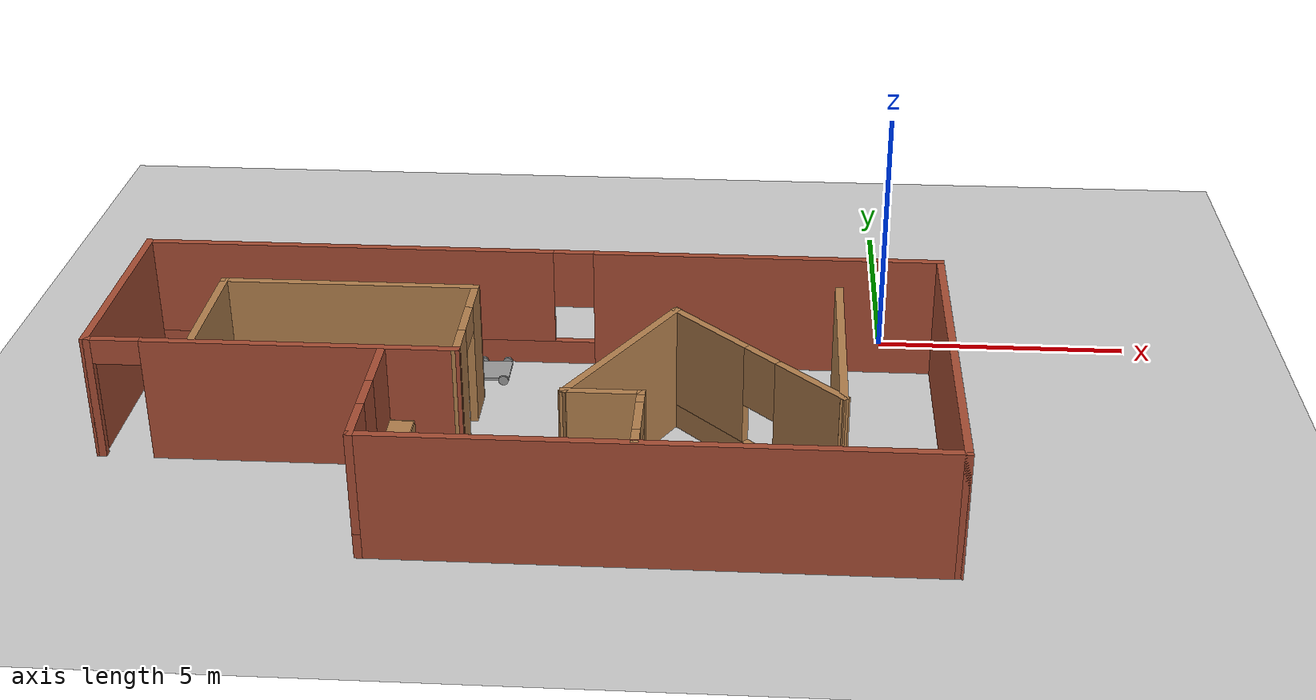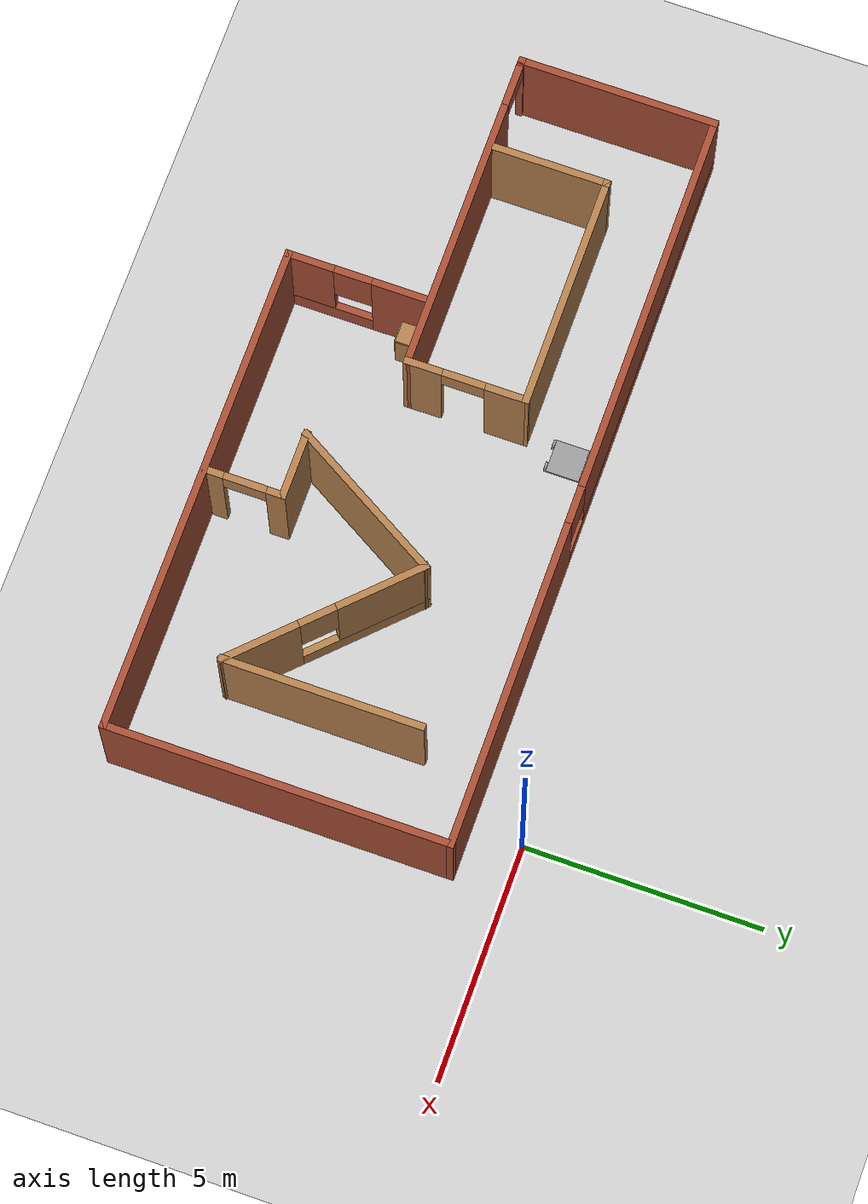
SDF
<sdf version="1.6">
 <world name="default">
  <model name="ground_plane">
   <static>1</static>
   <link name="link">
    <collision name="collision">
     <geometry><plane><normal>0 0 1</normal><size>100 100</size></plane></geometry>
     <surface>
      <contact><collide_bitmask>65535</collide_bitmask></contact>
      <friction><ode><mu>100</mu><mu2>50</mu2></ode></friction>
     </surface>
    </collision>
    <visual name="visual">
     <cast_shadows>0</cast_shadows>
     <geometry><plane><normal>0 0 1</normal><size>100 100</size></plane></geometry>
     <material>
      <script><uri>file://media/materials/scripts/gazebo.material</uri><name>Gazebo/Grey</name></script>
     </material>
    </visual>
   </link>
  </model>
  <model name="house">
   <pose>-6.8963 -4.67451 0 0 -0 0</pose>
   <link name="Wall_1">
    <pose>-2.425 -2.125 0 0 -0 -1.5708</pose>
    <visual name="Wall_1_Visual_0">
     <pose>-0.924394 0 1.25 0 -0 0</pose>
     <geometry><box><size>1.15121 0.15 2.5</size></box></geometry>
     <material>
      <script><uri>file://media/materials/scripts/gazebo.material</uri><name>Gazebo/Bricks</name></script>
      <ambient>1 1 1 1</ambient>
     </material>
     <meta><layer>0</layer></meta>
    </visual>
    <collision name="Wall_1_Collision_0">
     <geometry><box><size>1.15121 0.15 2.5</size></box></geometry>
     <pose>-0.924394 0 1.25 0 -0 0</pose>
    </collision>
    <visual name="Wall_1_Visual_1">
     <pose>0.575606 0 0.25 0 -0 0</pose>
     <geometry><box><size>1.84879 0.15 0.5</size></box></geometry>
     <material>
      <script><uri>file://media/materials/scripts/gazebo.material</uri><name>Gazebo/Bricks</name></script>
      <ambient>1 1 1 1</ambient>
     </material>
     <meta><layer>0</layer></meta>
    </visual>
    <collision name="Wall_1_Collision_1">
     <geometry><box><size>1.84879 0.15 0.5</size></box></geometry>
     <pose>0.575606 0 0.25 0 -0 0</pose>
    </collision>
    <visual name="Wall_1_Visual_2">
     <pose>0.975606 0 1.5 0 -0 0</pose>
     <geometry><box><size>1.04879 0.15 2</size></box></geometry>
     <material>
      <script><uri>file://media/materials/scripts/gazebo.material</uri><name>Gazebo/Bricks</name></script>
      <ambient>1 1 1 1</ambient>
     </material>
     <meta><layer>0</layer></meta>
    </visual>
    <collision name="Wall_1_Collision_2">
     <geometry><box><size>1.04879 0.15 2</size></box></geometry>
     <pose>0.975606 0 1.5 0 -0 0</pose>
    </collision>
    <visual name="Wall_1_Visual_3">
     <pose>0.051212 0 1.9 0 -0 0</pose>
     <geometry><box><size>0.8 0.15 1.2</size></box></geometry>
     <material>
      <script><uri>file://media/materials/scripts/gazebo.material</uri><name>Gazebo/Bricks</name></script>
      <ambient>1 1 1 1</ambient>
     </material>
     <meta><layer>0</layer></meta>
    </visual>
    <collision name="Wall_1_Collision_3">
     <geometry><box><size>0.8 0.15 1.2</size></box></geometry>
     <pose>0.051212 0 1.9 0 -0 0</pose>
    </collision>
   </link>
   <link name="Wall_13">
    <pose>-1.07695 0.690857 0 0 -0 -1.56922</pose>
    <visual name="Wall_13_Visual_0">
     <pose>-0.852217 0 1.25 0 -0 0</pose>
     <geometry><box><size>0.927282 0.15 2.5</size></box></geometry>
     <material>
      <script><uri>file://media/materials/scripts/gazebo.material</uri><name>Gazebo/Wood</name></script>
      <ambient>1 1 1 1</ambient>
     </material>
     <meta><layer>0</layer></meta>
    </visual>
    <collision name="Wall_13_Collision_0">
     <geometry><box><size>0.927282 0.15 2.5</size></box></geometry>
     <pose>-0.852217 0 1.25 0 -0 0</pose>
    </collision>
    <visual name="Wall_13_Visual_1">
     <pose>0.913641 0 1.25 0 -0 0</pose>
     <geometry><box><size>0.804435 0.15 2.5</size></box></geometry>
     <material>
      <script><uri>file://media/materials/scripts/gazebo.material</uri><name>Gazebo/Wood</name></script>
      <ambient>1 1 1 1</ambient>
     </material>
     <meta><layer>0</layer></meta>
    </visual>
    <collision name="Wall_13_Collision_1">
     <geometry><box><size>0.804435 0.15 2.5</size></box></geometry>
     <pose>0.913641 0 1.25 0 -0 0</pose>
    </collision>
    <visual name="Wall_13_Visual_2">
     <pose>0.061424 0 2.25 0 -0 0</pose>
     <geometry><box><size>0.9 0.15 0.5</size></box></geometry>
     <material>
      <script><uri>file://media/materials/scripts/gazebo.material</uri><name>Gazebo/Wood</name></script>
      <ambient>1 1 1 1</ambient>
     </material>
     <meta><layer>0</layer></meta>
    </visual>
    <collision name="Wall_13_Collision_2">
     <geometry><box><size>0.9 0.15 0.5</size></box></geometry>
     <pose>0.061424 0 2.25 0 -0 0</pose>
    </collision>
   </link>
   <link name="Wall_15">
    <collision name="Wall_15_Collision">
     <geometry><box><size>4.25 0.15 2.5</size></box></geometry>
     <pose>0 0 1.25 0 -0 0</pose>
    </collision>
    <visual name="Wall_15_Visual">
     <pose>0 0 1.25 0 -0 0</pose>
     <geometry><box><size>4.25 0.15 2.5</size></box></geometry>
     <material>
      <script><uri>file://media/materials/scripts/gazebo.material</uri><name>Gazebo/Wood</name></script>
      <ambient>1 1 1 1</ambient>
     </material>
     <meta><layer>0</layer></meta>
    </visual>
    <pose>5.90972 0.188689 0 0 -0 -1.5708</pose>
   </link>
   <link name="Wall_16">
    <pose>4.37176 -0.323354 0 0 -0 2.35619</pose>
    <visual name="Wall_16_Visual_0">
     <pose>-1.39671 0 1.25 0 -0 0</pose>
     <geometry><box><size>1.70657 0.15 2.5</size></box></geometry>
     <material>
      <script><uri>file://media/materials/scripts/gazebo.material</uri><name>Gazebo/Wood</name></script>
      <ambient>1 1 1 1</ambient>
     </material>
     <meta><layer>0</layer></meta>
    </visual>
    <collision name="Wall_16_Collision_0">
     <geometry><box><size>1.70657 0.15 2.5</size></box></geometry>
     <pose>-1.39671 0 1.25 0 -0 0</pose>
    </collision>
    <visual name="Wall_16_Visual_1">
     <pose>0.853285 0 0.25 0 -0 0</pose>
     <geometry><box><size>2.79343 0.15 0.5</size></box></geometry>
     <material>
      <script><uri>file://media/materials/scripts/gazebo.material</uri><name>Gazebo/Wood</name></script>
      <ambient>1 1 1 1</ambient>
     </material>
     <meta><layer>0</layer></meta>
    </visual>
    <collision name="Wall_16_Collision_1">
     <geometry><box><size>2.79343 0.15 0.5</size></box></geometry>
     <pose>0.853285 0 0.25 0 -0 0</pose>
    </collision>
    <visual name="Wall_16_Visual_2">
     <pose>1.25328 0 1.5 0 -0 0</pose>
     <geometry><box><size>1.99343 0.15 2</size></box></geometry>
     <material>
      <script><uri>file://media/materials/scripts/gazebo.material</uri><name>Gazebo/Wood</name></script>
      <ambient>1 1 1 1</ambient>
     </material>
     <meta><layer>0</layer></meta>
    </visual>
    <collision name="Wall_16_Collision_2">
     <geometry><box><size>1.99343 0.15 2</size></box></geometry>
     <pose>1.25328 0 1.5 0 -0 0</pose>
    </collision>
    <visual name="Wall_16_Visual_3">
     <pose>-0.143431 0 1.9 0 -0 0</pose>
     <geometry><box><size>0.8 0.15 1.2</size></box></geometry>
     <material>
      <script><uri>file://media/materials/scripts/gazebo.material</uri><name>Gazebo/Wood</name></script>
      <ambient>1 1 1 1</ambient>
     </material>
     <meta><layer>0</layer></meta>
    </visual>
    <collision name="Wall_16_Collision_3">
     <geometry><box><size>0.8 0.15 1.2</size></box></geometry>
     <pose>-0.143431 0 1.9 0 -0 0</pose>
    </collision>
   </link>
   <link name="Wall_17">
    <collision name="Wall_17_Collision">
     <geometry><box><size>3.75 0.15 2.5</size></box></geometry>
     <pose>0 0 1.25 0 -0 0</pose>
    </collision>
    <visual name="Wall_17_Visual">
     <pose>0 0 1.25 0 -0 0</pose>
     <geometry><box><size>3.75 0.15 2.5</size></box></geometry>
     <material>
      <script><uri>file://media/materials/scripts/gazebo.material</uri><name>Gazebo/Wood</name></script>
      <ambient>1 1 1 1</ambient>
     </material>
     <meta><layer>0</layer></meta>
    </visual>
    <pose>1.9338 -0.344242 0 0 -0 -2.0944</pose>
   </link>
   <link name="Wall_18">
    <collision name="Wall_18_Collision">
     <geometry><box><size>1.5 0.15 2.5</size></box></geometry>
     <pose>0 0 1.25 0 -0 0</pose>
    </collision>
    <visual name="Wall_18_Visual">
     <pose>0 0 1.25 0 -0 0</pose>
     <geometry><box><size>1.5 0.15 2.5</size></box></geometry>
     <material>
      <script><uri>file://media/materials/scripts/gazebo.material</uri><name>Gazebo/Wood</name></script>
      <ambient>1 1 1 1</ambient>
     </material>
     <meta><layer>0</layer></meta>
    </visual>
    <pose>1.7088 -1.90309 0 0 -0 0</pose>
   </link>
   <link name="Wall_19">
    <pose>2.38381 -2.70309 0 0 -0 -1.5708</pose>
    <visual name="Wall_19_Visual_0">
     <pose>-0.669476 0 1.25 0 -0 0</pose>
     <geometry><box><size>0.411048 0.15 2.5</size></box></geometry>
     <material>
      <script><uri>file://media/materials/scripts/gazebo.material</uri><name>Gazebo/Wood</name></script>
      <ambient>1 1 1 1</ambient>
     </material>
     <meta><layer>0</layer></meta>
    </visual>
    <collision name="Wall_19_Collision_0">
     <geometry><box><size>0.411048 0.15 2.5</size></box></geometry>
     <pose>-0.669476 0 1.25 0 -0 0</pose>
    </collision>
    <visual name="Wall_19_Visual_1">
     <pose>0.655524 0 1.25 0 -0 0</pose>
     <geometry><box><size>0.438952 0.15 2.5</size></box></geometry>
     <material>
      <script><uri>file://media/materials/scripts/gazebo.material</uri><name>Gazebo/Wood</name></script>
      <ambient>1 1 1 1</ambient>
     </material>
     <meta><layer>0</layer></meta>
    </visual>
    <collision name="Wall_19_Collision_1">
     <geometry><box><size>0.438952 0.15 2.5</size></box></geometry>
     <pose>0.655524 0 1.25 0 -0 0</pose>
    </collision>
    <visual name="Wall_19_Visual_2">
     <pose>-0.013952 0 2.25 0 -0 0</pose>
     <geometry><box><size>0.9 0.15 0.5</size></box></geometry>
     <material>
      <script><uri>file://media/materials/scripts/gazebo.material</uri><name>Gazebo/Wood</name></script>
      <ambient>1 1 1 1</ambient>
     </material>
     <meta><layer>0</layer></meta>
    </visual>
    <collision name="Wall_19_Collision_2">
     <geometry><box><size>0.9 0.15 0.5</size></box></geometry>
     <pose>-0.013952 0 2.25 0 -0 0</pose>
    </collision>
   </link>
   <link name="Wall_2">
    <collision name="Wall_2_Collision">
     <geometry><box><size>10.5 0.15 2.5</size></box></geometry>
     <pose>0 0 1.25 0 -0 0</pose>
    </collision>
    <visual name="Wall_2_Visual">
     <pose>0 0 1.25 0 -0 0</pose>
     <geometry><box><size>10.5 0.15 2.5</size></box></geometry>
     <material>
      <script><uri>file://media/materials/scripts/gazebo.material</uri><name>Gazebo/Bricks</name></script>
      <ambient>1 1 1 1</ambient>
     </material>
     <meta><layer>0</layer></meta>
    </visual>
    <pose>2.75 -3.55 0 0 -0 0</pose>
   </link>
   <link name="Wall_3">
    <collision name="Wall_3_Collision">
     <geometry><box><size>7.25 0.15 2.5</size></box></geometry>
     <pose>0 0 1.25 0 -0 0</pose>
    </collision>
    <visual name="Wall_3_Visual">
     <pose>0 0 1.25 0 -0 0</pose>
     <geometry><box><size>7.25 0.15 2.5</size></box></geometry>
     <material>
      <script><uri>file://media/materials/scripts/gazebo.material</uri><name>Gazebo/Bricks</name></script>
      <ambient>1 1 1 1</ambient>
     </material>
     <meta><layer>0</layer></meta>
    </visual>
    <pose>7.925 0 0 0 -0 1.5708</pose>
   </link>
   <link name="Wall_4">
    <pose>-0 3.55 0 0 -0 3.14159</pose>
    <visual name="Wall_4_Visual_0">
     <pose>-4.53004 0 1.25 0 -0 0</pose>
     <geometry><box><size>6.93992 0.15 2.5</size></box></geometry>
     <material>
      <script><uri>file://media/materials/scripts/gazebo.material</uri><name>Gazebo/Bricks</name></script>
      <ambient>1 1 1 1</ambient>
     </material>
     <meta><layer>0</layer></meta>
    </visual>
    <collision name="Wall_4_Collision_0">
     <geometry><box><size>6.93992 0.15 2.5</size></box></geometry>
     <pose>-4.53004 0 1.25 0 -0 0</pose>
    </collision>
    <visual name="Wall_4_Visual_1">
     <pose>3.46996 0 0.25 0 -0 0</pose>
     <geometry><box><size>9.06008 0.15 0.5</size></box></geometry>
     <material>
      <script><uri>file://media/materials/scripts/gazebo.material</uri><name>Gazebo/Bricks</name></script>
      <ambient>1 1 1 1</ambient>
     </material>
     <meta><layer>0</layer></meta>
    </visual>
    <collision name="Wall_4_Collision_1">
     <geometry><box><size>9.06008 0.15 0.5</size></box></geometry>
     <pose>3.46996 0 0.25 0 -0 0</pose>
    </collision>
    <visual name="Wall_4_Visual_2">
     <pose>3.86996 0 1.5 0 -0 0</pose>
     <geometry><box><size>8.26008 0.15 2</size></box></geometry>
     <material>
      <script><uri>file://media/materials/scripts/gazebo.material</uri><name>Gazebo/Bricks</name></script>
      <ambient>1 1 1 1</ambient>
     </material>
     <meta><layer>0</layer></meta>
    </visual>
    <collision name="Wall_4_Collision_2">
     <geometry><box><size>8.26008 0.15 2</size></box></geometry>
     <pose>3.86996 0 1.5 0 -0 0</pose>
    </collision>
    <visual name="Wall_4_Visual_3">
     <pose>-0.660078 0 1.9 0 -0 0</pose>
     <geometry><box><size>0.8 0.15 1.2</size></box></geometry>
     <material>
      <script><uri>file://media/materials/scripts/gazebo.material</uri><name>Gazebo/Bricks</name></script>
      <ambient>1 1 1 1</ambient>
     </material>
     <meta><layer>0</layer></meta>
    </visual>
    <collision name="Wall_4_Collision_3">
     <geometry><box><size>0.8 0.15 1.2</size></box></geometry>
     <pose>-0.660078 0 1.9 0 -0 0</pose>
    </collision>
   </link>
   <link name="Wall_5">
    <collision name="Wall_5_Collision">
     <geometry><box><size>4.25 0.15 2.5</size></box></geometry>
     <pose>0 0 1.25 0 -0 0</pose>
    </collision>
    <visual name="Wall_5_Visual">
     <pose>0 0 1.25 0 -0 0</pose>
     <geometry><box><size>4.25 0.15 2.5</size></box></geometry>
     <material>
      <script><uri>file://media/materials/scripts/gazebo.material</uri><name>Gazebo/Bricks</name></script>
      <ambient>1 1 1 1</ambient>
     </material>
     <meta><layer>0</layer></meta>
    </visual>
    <pose>-7.925 1.5 0 0 -0 -1.5708</pose>
   </link>
   <link name="Wall_6">
    <pose>-4.5 -0.55 0 0 -0 0</pose>
    <visual name="Wall_6_Visual_0">
     <pose>-3.40348 0 1.25 0 -0 0</pose>
     <geometry><box><size>0.193029 0.15 2.5</size></box></geometry>
     <material>
      <script><uri>file://media/materials/scripts/gazebo.material</uri><name>Gazebo/Bricks</name></script>
      <ambient>1 1 1 1</ambient>
     </material>
     <meta><layer>0</layer></meta>
    </visual>
    <collision name="Wall_6_Collision_0">
     <geometry><box><size>0.193029 0.15 2.5</size></box></geometry>
     <pose>-3.40348 0 1.25 0 -0 0</pose>
    </collision>
    <visual name="Wall_6_Visual_1">
     <pose>0.546515 0 1.25 0 -0 0</pose>
     <geometry><box><size>5.90697 0.15 2.5</size></box></geometry>
     <material>
      <script><uri>file://media/materials/scripts/gazebo.material</uri><name>Gazebo/Bricks</name></script>
      <ambient>1 1 1 1</ambient>
     </material>
     <meta><layer>0</layer></meta>
    </visual>
    <collision name="Wall_6_Collision_1">
     <geometry><box><size>5.90697 0.15 2.5</size></box></geometry>
     <pose>0.546515 0 1.25 0 -0 0</pose>
    </collision>
    <visual name="Wall_6_Visual_2">
     <pose>-2.85697 0 2.25 0 -0 0</pose>
     <geometry><box><size>0.9 0.15 0.5</size></box></geometry>
     <material>
      <script><uri>file://media/materials/scripts/gazebo.material</uri><name>Gazebo/Bricks</name></script>
      <ambient>1 1 1 1</ambient>
     </material>
     <meta><layer>0</layer></meta>
    </visual>
    <collision name="Wall_6_Collision_2">
     <geometry><box><size>0.9 0.15 0.5</size></box></geometry>
     <pose>-2.85697 0 2.25 0 -0 0</pose>
    </collision>
   </link>
   <link name="Wall_8">
    <collision name="Wall_8_Collision">
     <geometry><box><size>2.5 0.15 2.5</size></box></geometry>
     <pose>0 0 1.25 0 -0 0</pose>
    </collision>
    <visual name="Wall_8_Visual">
     <pose>0 0 1.25 0 -0 0</pose>
     <geometry><box><size>2.5 0.15 2.5</size></box></geometry>
     <material>
      <script><uri>file://media/materials/scripts/gazebo.material</uri><name>Gazebo/Wood</name></script>
      <ambient>1 1 1 1</ambient>
     </material>
     <meta><layer>0</layer></meta>
    </visual>
    <pose>-5.96913 0.756714 0 0 -0 1.5708</pose>
   </link>
   <link name="Wall_9">
    <collision name="Wall_9_Collision">
     <geometry><box><size>5.04023 0.15 2.5</size></box></geometry>
     <pose>0 0 1.25 0 -0 0</pose>
    </collision>
    <visual name="Wall_9_Visual">
     <pose>0 0 1.25 0 -0 0</pose>
     <geometry><box><size>5.04023 0.15 2.5</size></box></geometry>
     <material>
      <script><uri>file://media/materials/scripts/gazebo.material</uri><name>Gazebo/Wood</name></script>
      <ambient>1 1 1 1</ambient>
     </material>
     <meta><layer>0</layer></meta>
    </visual>
    <pose>-3.52402 1.93171 0 0 -0 0</pose>
   </link>
   <static>1</static>
  </model>
  <model name="Robot_clone">
   <link name="link_2">
    <inertial>
     <mass>1</mass>
     <inertia>
      <ixx>0.166667</ixx>
      <ixy>0</ixy>
      <ixz>0</ixz>
      <iyy>0.166667</iyy>
      <iyz>0</iyz>
      <izz>0.166667</izz>
     </inertia>
    </inertial>
    <pose>0 0.5 0.3 0 -0 0</pose>
    <visual name="visual">
     <geometry><box><size>0.7 0.7 0.05</size></box></geometry>
     <material>
      <lighting>1</lighting>
      <script><uri>file://media/materials/scripts/gazebo.material</uri><name>Gazebo/Grey</name></script>
      <shader type="vertex"><normal_map>__default__</normal_map></shader>
      <ambient>0.3 0.3 0.3 1</ambient>
      <diffuse>0.7 0.7 0.7 1</diffuse>
      <specular>0.01 0.01 0.01 1</specular>
      <emissive>0 0 0 1</emissive>
     </material>
    </visual>
    <collision name="collision">
     <geometry><box><size>0.7 0.7 0.05</size></box></geometry>
     <surface>
      <friction>
       <ode><mu>1</mu><mu2>1</mu2><fdir1>0 0 0</fdir1><slip1>0</slip1><slip2>0</slip2></ode>
       <torsional>
        <coefficient>1</coefficient>
        <patch_radius>0</patch_radius>
        <surface_radius>0</surface_radius>
        <use_patch_radius>1</use_patch_radius>
        <ode><slip>0</slip></ode>
       </torsional>
      </friction>
      <bounce><restitution_coefficient>0</restitution_coefficient><threshold>1e+06</threshold></bounce>
      <contact>
       <collide_without_contact>0</collide_without_contact>
       <collide_without_contact_bitmask>1</collide_without_contact_bitmask>
       <collide_bitmask>1</collide_bitmask>
       <ode>
        <soft_cfm>0</soft_cfm>
        <soft_erp>0.2</soft_erp>
        <kp>1e+13</kp>
        <kd>1</kd>
        <max_vel>0.01</max_vel>
        <min_depth>0</min_depth>
       </ode>
       <bullet>
        <split_impulse>1</split_impulse>
        <split_impulse_penetration_threshold>-0.01</split_impulse_penetration_threshold>
        <soft_cfm>0</soft_cfm>
        <soft_erp>0.2</soft_erp>
        <kp>1e+13</kp>
        <kd>1</kd>
       </bullet>
      </contact>
     </surface>
    </collision>
   </link>
   <link name="link_0">
    <inertial>
     <mass>1</mass>
     <inertia><ixx>0.145833</ixx><ixy>0</ixy><ixz>0</ixz><iyy>0.145833</iyy><iyz>0</iyz><izz>0.125</izz></inertia>
    </inertial>
    <pose>-0.250189 0.875048 0.300006 8e-06 -0 0.000261</pose>
    <visual name="visual">
     <pose>0 0 0 1.571 -0 0</pose>
     <geometry><cylinder><radius>0.1</radius><length>0.05</length></cylinder></geometry>
     <material>
      <lighting>1</lighting>
      <script><uri>file://media/materials/scripts/gazebo.material</uri><name>Gazebo/Grey</name></script>
      <shader type="vertex"><normal_map>__default__</normal_map></shader>
      <ambient>0.3 0.3 0.3 1</ambient>
      <diffuse>0.7 0.7 0.7 1</diffuse>
      <specular>0.01 0.01 0.01 1</specular>
      <emissive>0 0 0 1</emissive>
     </material>
    </visual>
    <collision name="collision">
     <pose>0 0 0 1.571 -0 0</pose>
     <geometry><cylinder><radius>0.1</radius><length>0.05</length></cylinder></geometry>
     <surface>
      <friction>
       <ode><mu>1</mu><mu2>1</mu2><fdir1>0 0 0</fdir1><slip1>0</slip1><slip2>0</slip2></ode>
       <torsional>
        <coefficient>1</coefficient>
        <patch_radius>0</patch_radius>
        <surface_radius>0</surface_radius>
        <use_patch_radius>1</use_patch_radius>
        <ode><slip>0</slip></ode>
       </torsional>
      </friction>
      <bounce><restitution_coefficient>0</restitution_coefficient><threshold>1e+06</threshold></bounce>
      <contact>
       <collide_without_contact>0</collide_without_contact>
       <collide_without_contact_bitmask>1</collide_without_contact_bitmask>
       <collide_bitmask>1</collide_bitmask>
       <ode>
        <soft_cfm>0</soft_cfm>
        <soft_erp>0.2</soft_erp>
        <kp>1e+13</kp>
        <kd>1</kd>
        <max_vel>0.01</max_vel>
        <min_depth>0</min_depth>
       </ode>
       <bullet>
        <split_impulse>1</split_impulse>
        <split_impulse_penetration_threshold>-0.01</split_impulse_penetration_threshold>
        <soft_cfm>0</soft_cfm>
        <soft_erp>0.2</soft_erp>
        <kp>1e+13</kp>
        <kd>1</kd>
       </bullet>
      </contact>
     </surface>
    </collision>
   </link>
   <link name="link_0_clone">
    <inertial>
     <mass>1</mass>
     <inertia><ixx>0.145833</ixx><ixy>0</ixy><ixz>0</ixz><iyy>0.145833</iyy><iyz>0</iyz><izz>0.125</izz></inertia>
    </inertial>
    <pose>-0.249987 0.124796 0.3 1.6e-05 -0 0.000522</pose>
    <visual name="visual">
     <pose>0 0 0 1.571 -0 0</pose>
     <geometry><cylinder><radius>0.1</radius><length>0.05</length></cylinder></geometry>
     <material>
      <lighting>1</lighting>
      <script><uri>file://media/materials/scripts/gazebo.material</uri><name>Gazebo/Grey</name></script>
      <shader type="vertex"><normal_map>__default__</normal_map></shader>
      <ambient>0.3 0.3 0.3 1</ambient>
      <diffuse>0.7 0.7 0.7 1</diffuse>
      <specular>0.01 0.01 0.01 1</specular>
      <emissive>0 0 0 1</emissive>
     </material>
    </visual>
    <collision name="collision">
     <pose>0 0 0 1.571 -0 0</pose>
     <geometry><cylinder><radius>0.1</radius><length>0.05</length></cylinder></geometry>
     <surface>
      <friction>
       <ode><mu>1</mu><mu2>1</mu2><fdir1>0 0 0</fdir1><slip1>0</slip1><slip2>0</slip2></ode>
       <torsional>
        <coefficient>1</coefficient>
        <patch_radius>0</patch_radius>
        <surface_radius>0</surface_radius>
        <use_patch_radius>1</use_patch_radius>
        <ode><slip>0</slip></ode>
       </torsional>
      </friction>
      <bounce><restitution_coefficient>0</restitution_coefficient><threshold>1e+06</threshold></bounce>
      <contact>
       <collide_without_contact>0</collide_without_contact>
       <collide_without_contact_bitmask>1</collide_without_contact_bitmask>
       <collide_bitmask>1</collide_bitmask>
       <ode>
        <soft_cfm>0</soft_cfm>
        <soft_erp>0.2</soft_erp>
        <kp>1e+13</kp>
        <kd>1</kd>
        <max_vel>0.01</max_vel>
        <min_depth>0</min_depth>
       </ode>
       <bullet>
        <split_impulse>1</split_impulse>
        <split_impulse_penetration_threshold>-0.01</split_impulse_penetration_threshold>
        <soft_cfm>0</soft_cfm>
        <soft_erp>0.2</soft_erp>
        <kp>1e+13</kp>
        <kd>1</kd>
       </bullet>
      </contact>
     </surface>
    </collision>
   </link>
   <link name="link_0_clone_0">
    <inertial>
     <mass>1</mass>
     <inertia><ixx>0.145833</ixx><ixy>0</ixy><ixz>0</ixz><iyy>0.145833</iyy><iyz>0</iyz><izz>0.125</izz></inertia>
    </inertial>
    <pose>0.249987 0.875204 0.3 1.6e-05 -0 0.000522</pose>
    <visual name="visual">
     <pose>0 0 0 1.571 -0 0</pose>
     <geometry><cylinder><radius>0.1</radius><length>0.05</length></cylinder></geometry>
     <material>
      <lighting>1</lighting>
      <script><uri>file://media/materials/scripts/gazebo.material</uri><name>Gazebo/Grey</name></script>
      <shader type="vertex"><normal_map>__default__</normal_map></shader>
      <ambient>0.3 0.3 0.3 1</ambient>
      <diffuse>0.7 0.7 0.7 1</diffuse>
      <specular>0.01 0.01 0.01 1</specular>
      <emissive>0 0 0 1</emissive>
     </material>
    </visual>
    <collision name="collision">
     <pose>0 0 0 1.571 -0 0</pose>
     <geometry><cylinder><radius>0.1</radius><length>0.05</length></cylinder></geometry>
     <surface>
      <friction>
       <ode><mu>1</mu><mu2>1</mu2><fdir1>0 0 0</fdir1><slip1>0</slip1><slip2>0</slip2></ode>
       <torsional>
        <coefficient>1</coefficient>
        <patch_radius>0</patch_radius>
        <surface_radius>0</surface_radius>
        <use_patch_radius>1</use_patch_radius>
        <ode><slip>0</slip></ode>
       </torsional>
      </friction>
      <bounce><restitution_coefficient>0</restitution_coefficient><threshold>1e+06</threshold></bounce>
      <contact>
       <collide_without_contact>0</collide_without_contact>
       <collide_without_contact_bitmask>1</collide_without_contact_bitmask>
       <collide_bitmask>1</collide_bitmask>
       <ode>
        <soft_cfm>0</soft_cfm>
        <soft_erp>0.2</soft_erp>
        <kp>1e+13</kp>
        <kd>1</kd>
        <max_vel>0.01</max_vel>
        <min_depth>0</min_depth>
       </ode>
       <bullet>
        <split_impulse>1</split_impulse>
        <split_impulse_penetration_threshold>-0.01</split_impulse_penetration_threshold>
        <soft_cfm>0</soft_cfm>
        <soft_erp>0.2</soft_erp>
        <kp>1e+13</kp>
        <kd>1</kd>
       </bullet>
      </contact>
     </surface>
    </collision>
   </link>
   <link name="link_0_clone_0_clone">
    <inertial>
     <mass>1</mass>
     <inertia><ixx>0.145833</ixx><ixy>0</ixy><ixz>0</ixz><iyy>0.145833</iyy><iyz>0</iyz><izz>0.125</izz></inertia>
    </inertial>
    <pose>0.250176 0.124899 0.3 2.4e-05 -0 0.000783</pose>
    <visual name="visual">
     <pose>0 0 0 1.571 -0 0</pose>
     <geometry><cylinder><radius>0.1</radius><length>0.05</length></cylinder></geometry>
     <material>
      <lighting>1</lighting>
      <script><uri>file://media/materials/scripts/gazebo.material</uri><name>Gazebo/Grey</name></script>
      <shader type="vertex"><normal_map>__default__</normal_map></shader>
      <ambient>0.3 0.3 0.3 1</ambient>
      <diffuse>0.7 0.7 0.7 1</diffuse>
      <specular>0.01 0.01 0.01 1</specular>
      <emissive>0 0 0 1</emissive>
     </material>
    </visual>
    <collision name="collision">
     <pose>0 0 0 1.571 -0 0</pose>
     <geometry><cylinder><radius>0.1</radius><length>0.05</length></cylinder></geometry>
     <surface>
      <friction>
       <ode><mu>1</mu><mu2>1</mu2><fdir1>0 0 0</fdir1><slip1>0</slip1><slip2>0</slip2></ode>
       <torsional>
        <coefficient>1</coefficient>
        <patch_radius>0</patch_radius>
        <surface_radius>0</surface_radius>
        <use_patch_radius>1</use_patch_radius>
        <ode><slip>0</slip></ode>
       </torsional>
      </friction>
      <bounce><restitution_coefficient>0</restitution_coefficient><threshold>1e+06</threshold></bounce>
      <contact>
       <collide_without_contact>0</collide_without_contact>
       <collide_without_contact_bitmask>1</collide_without_contact_bitmask>
       <collide_bitmask>1</collide_bitmask>
       <ode>
        <soft_cfm>0</soft_cfm>
        <soft_erp>0.2</soft_erp>
        <kp>1e+13</kp>
        <kd>1</kd>
        <max_vel>0.01</max_vel>
        <min_depth>0</min_depth>
       </ode>
       <bullet>
        <split_impulse>1</split_impulse>
        <split_impulse_penetration_threshold>-0.01</split_impulse_penetration_threshold>
        <soft_cfm>0</soft_cfm>
        <soft_erp>0.2</soft_erp>
        <kp>1e+13</kp>
        <kd>1</kd>
       </bullet>
      </contact>
     </surface>
    </collision>
   </link>
   <joint name="link_2_JOINT_10" type="revolute">
    <parent>link_2</parent>
    <child>link_0_clone</child>
    <axis>
     <xyz>0 0 1</xyz>
     <use_parent_model_frame>0</use_parent_model_frame>
     <limit>
      <lower>-1.79769e+308</lower>
      <upper>1.79769e+308</upper>
      <effort>-1</effort>
      <velocity>-1</velocity>
     </limit>
     <dynamics>
      <spring_reference>0</spring_reference>
      <spring_stiffness>0</spring_stiffness>
      <damping>0</damping>
     </dynamics>
    </axis>
    <physics>
     <ode><limit><cfm>0</cfm><erp>0.2</erp></limit><suspension><cfm>0</cfm><erp>0.2</erp></suspension></ode>
    </physics>
   </joint>
   <joint name="link_2_JOINT_1" type="revolute">
    <parent>link_2</parent>
    <child>link_0</child>
    <axis>
     <xyz>0 0 1</xyz>
     <use_parent_model_frame>0</use_parent_model_frame>
     <limit>
      <lower>-1.79769e+308</lower>
      <upper>1.79769e+308</upper>
      <effort>-1</effort>
      <velocity>-1</velocity>
     </limit>
     <dynamics>
      <spring_reference>0</spring_reference>
      <spring_stiffness>0</spring_stiffness>
      <damping>0</damping>
      <friction>0</friction>
     </dynamics>
    </axis>
    <physics>
     <ode><limit><cfm>0</cfm><erp>0.2</erp></limit><suspension><cfm>0</cfm><erp>0.2</erp></suspension></ode>
    </physics>
   </joint>
   <joint name="link_2_JOINT_8" type="revolute">
    <parent>link_2</parent>
    <child>link_0_clone_0</child>
    <axis>
     <xyz>0 0 1</xyz>
     <use_parent_model_frame>0</use_parent_model_frame>
     <limit>
      <lower>-1.79769e+308</lower>
      <upper>1.79769e+308</upper>
      <effort>-1</effort>
      <velocity>-1</velocity>
     </limit>
     <dynamics>
      <spring_reference>0</spring_reference>
      <spring_stiffness>0</spring_stiffness>
      <damping>0</damping>
     </dynamics>
    </axis>
    <physics>
     <ode><limit><cfm>0</cfm><erp>0.2</erp></limit><suspension><cfm>0</cfm><erp>0.2</erp></suspension></ode>
    </physics>
   </joint>
   <joint name="link_2_JOINT_9" type="revolute">
    <parent>link_2</parent>
    <child>link_0_clone_0_clone</child>
    <axis>
     <xyz>0 0 1</xyz>
     <use_parent_model_frame>0</use_parent_model_frame>
     <limit>
      <lower>-1.79769e+308</lower>
      <upper>1.79769e+308</upper>
      <effort>-1</effort>
      <velocity>-1</velocity>
     </limit>
     <dynamics>
      <spring_reference>0</spring_reference>
      <spring_stiffness>0</spring_stiffness>
      <damping>0</damping>
     </dynamics>
    </axis>
    <physics>
     <ode><limit><cfm>0</cfm><erp>0.2</erp></limit><suspension><cfm>0</cfm><erp>0.2</erp></suspension></ode>
    </physics>
   </joint>
   <static>0</static>
   <pose>-7.84387 -2.27637 -0.199998 0 -1.2e-05 8e-06</pose>
  </model>
  <model name="cabinet">
   <static>1</static>
   <link name="cabinet_bottom_plate">
    <inertial>
     <pose>0 0 -1 0 -0 0</pose>
     <inertia><ixx>2.05</ixx><ixy>0</ixy><ixz>0</ixz><iyy>2.05</iyy><iyz>0</iyz><izz>2.05</izz></inertia>
     <mass>25</mass>
    </inertial>
    <collision name="cabinet_bottom_plate_geom">
     <pose>0 0 0.01 0 -0 0</pose>
     <geometry><box><size>0.45 0.45 0.02</size></box></geometry>
    </collision>
    <visual name="cabinet_bottom_plate_geom_visual">
     <pose>0 0 0.01 0 -0 0</pose>
     <geometry><box><size>0.45 0.45 0.02</size></box></geometry>
     <material>
      <script><uri>file://media/materials/scripts/gazebo.material</uri><name>Gazebo/Wood</name></script>
     </material>
    </visual>
    <collision name="cabinet_bottom_plate_geom_cabinet_back_plate">
     <pose>0.235 0 0.51 0 -0 0</pose>
     <geometry><box><size>0.02 0.45 1.02</size></box></geometry>
    </collision>
    <visual name="cabinet_bottom_plate_geom_cabinet_back_plate_visual">
     <pose>0.235 0 0.51 0 -0 0</pose>
     <geometry><box><size>0.02 0.45 1.02</size></box></geometry>
     <material>
      <script><uri>file://media/materials/scripts/gazebo.material</uri><name>Gazebo/Wood</name></script>
     </material>
    </visual>
    <collision name="cabinet_bottom_plate_geom_cabinet_left_plate">
     <pose>0 0.235 0.51 0 -0 0</pose>
     <geometry><box><size>0.45 0.02 1.02</size></box></geometry>
    </collision>
    <visual name="cabinet_bottom_plate_geom_cabinet_left_plate_visual">
     <pose>0 0.235 0.51 0 -0 0</pose>
     <geometry><box><size>0.45 0.02 1.02</size></box></geometry>
     <material>
      <script><uri>file://media/materials/scripts/gazebo.material</uri><name>Gazebo/Wood</name></script>
     </material>
    </visual>
    <collision name="cabinet_bottom_plate_geom_cabinet_middle_plate">
     <pose>0 0 0.51 0 -0 0</pose>
     <geometry><box><size>0.45 0.45 0.02</size></box></geometry>
    </collision>
    <visual name="cabinet_bottom_plate_geom_cabinet_middle_plate_visual">
     <pose>0 0 0.51 0 -0 0</pose>
     <geometry><box><size>0.45 0.45 0.02</size></box></geometry>
     <material>
      <script><uri>file://media/materials/scripts/gazebo.material</uri><name>Gazebo/Wood</name></script>
     </material>
    </visual>
    <collision name="cabinet_bottom_plate_geom_cabinet_right_plate">
     <pose>0 -0.235 0.51 0 -0 0</pose>
     <geometry><box><size>0.45 0.02 1.02</size></box></geometry>
    </collision>
    <visual name="cabinet_bottom_plate_geom_cabinet_right_plate_visual">
     <pose>0 -0.235 0.51 0 -0 0</pose>
     <geometry><box><size>0.45 0.02 1.02</size></box></geometry>
     <material>
      <script><uri>file://media/materials/scripts/gazebo.material</uri><name>Gazebo/Wood</name></script>
     </material>
    </visual>
    <collision name="cabinet_bottom_plate_geom_cabinet_top_plate">
     <pose>0 0 1.01 0 -0 0</pose>
     <geometry><box><size>0.45 0.45 0.02</size></box></geometry>
    </collision>
    <visual name="cabinet_bottom_plate_geom_cabinet_top_plate_visual">
     <pose>0 0 1.01 0 -0 0</pose>
     <geometry><box><size>0.45 0.45 0.02</size></box></geometry>
     <material>
      <script><uri>file://media/materials/scripts/gazebo.material</uri><name>Gazebo/Wood</name></script>
     </material>
    </visual>
   </link>
   <pose>-9.02573 -5.57409 0 0 -0 0</pose>
  </model>
 </world>
</sdf>
